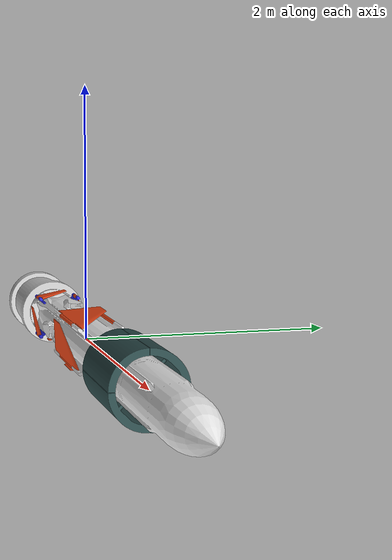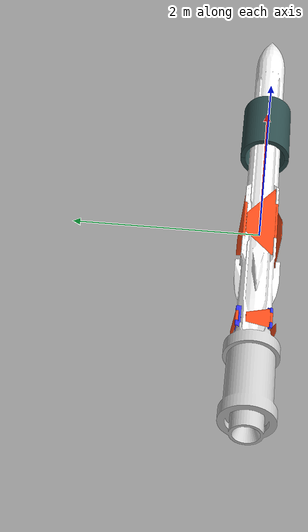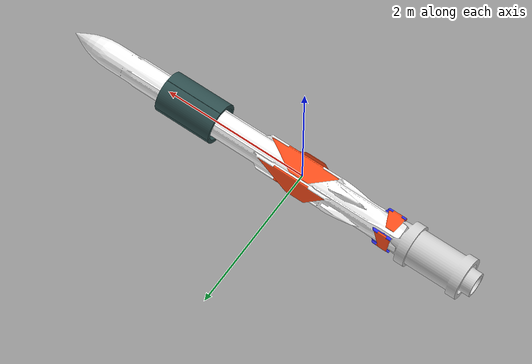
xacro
<?xml version="1.0" ?>
<robot name="mm40b3" xmlns:xacro="http://www.ros.org/wiki/xacro">

<xacro:include filename="$(find mm40b3_description)/urdf/materials.xacro" />
<xacro:include filename="$(find mm40b3_description)/urdf/mm40b3.trans" />
<xacro:include filename="$(find mm40b3_description)/urdf/mm40b3.gazebo" />

<link name="base_link">
  <inertial>
    <origin xyz="0.4387109641054164 -8.999584500533236e-06 -8.999321300238793e-06" rpy="0 0 0"/>
    <mass value="562.7679612503737"/>
    <inertia ixx="12.078708" iyy="817.09871" izz="817.09871" ixy="0.0" iyz="-0.0" ixz="0.0"/>
  </inertial>
  <visual>
    <origin xyz="0 0 0" rpy="0 0 0"/>
    <geometry>
      <mesh filename="package://mm40b3_description/meshes/base_link.stl" scale="0.001 0.001 0.001"/>
    </geometry>
    <material name="white"/>
  </visual>
  <collision>
    <origin xyz="0 0 0" rpy="0 0 0"/>
    <geometry>
      <mesh filename="package://mm40b3_description/meshes/base_link.stl" scale="0.001 0.001 0.001"/>
    </geometry>
  </collision>
</link>

<link name="FinHolder_1">
  <inertial>
    <origin xyz="0.011989934287455206 0.02489547078090079 0.02489052725207211" rpy="0 0 0"/>
    <mass value="0.6999999481439694"/>
    <inertia ixx="0.00025" iyy="0.004649" izz="0.004649" ixy="3e-05" iyz="-9.8e-05" ixz="3e-05"/>
  </inertial>
  <visual>
    <origin xyz="1.262133 -0.12727 -0.12727" rpy="0 0 0"/>
    <geometry>
      <mesh filename="package://mm40b3_description/meshes/FinHolder_1.stl" scale="0.001 0.001 0.001"/>
    </geometry>
    <material name="blue"/>
  </visual>
  <collision>
    <origin xyz="1.262133 -0.12727 -0.12727" rpy="0 0 0"/>
    <geometry>
      <mesh filename="package://mm40b3_description/meshes/FinHolder_1.stl" scale="0.001 0.001 0.001"/>
    </geometry>
  </collision>
</link>

<link name="FinHolder_4">
  <inertial>
    <origin xyz="0.011989934287455206 -0.024890526157868437 0.024895471044104445" rpy="0 0 0"/>
    <mass value="0.6999999481439694"/>
    <inertia ixx="0.00025" iyy="0.004649" izz="0.004649" ixy="-3e-05" iyz="9.8e-05" ixz="3e-05"/>
  </inertial>
  <visual>
    <origin xyz="1.262133 0.127288 -0.12727" rpy="0 0 0"/>
    <geometry>
      <mesh filename="package://mm40b3_description/meshes/FinHolder_4.stl" scale="0.001 0.001 0.001"/>
    </geometry>
    <material name="blue"/>
  </visual>
  <collision>
    <origin xyz="1.262133 0.127288 -0.12727" rpy="0 0 0"/>
    <geometry>
      <mesh filename="package://mm40b3_description/meshes/FinHolder_4.stl" scale="0.001 0.001 0.001"/>
    </geometry>
  </collision>
</link>

<link name="FinHolder_3">
  <inertial>
    <origin xyz="0.011989934287454318 -0.024895469949900717 -0.024890525894664756" rpy="0 0 0"/>
    <mass value="0.6999999481439694"/>
    <inertia ixx="0.00025" iyy="0.004649" izz="0.004649" ixy="-3e-05" iyz="-9.8e-05" ixz="-3e-05"/>
  </inertial>
  <visual>
    <origin xyz="1.262133 0.127288 0.127288" rpy="0 0 0"/>
    <geometry>
      <mesh filename="package://mm40b3_description/meshes/FinHolder_3.stl" scale="0.001 0.001 0.001"/>
    </geometry>
    <material name="blue"/>
  </visual>
  <collision>
    <origin xyz="1.262133 0.127288 0.127288" rpy="0 0 0"/>
    <geometry>
      <mesh filename="package://mm40b3_description/meshes/FinHolder_3.stl" scale="0.001 0.001 0.001"/>
    </geometry>
  </collision>
</link>

<link name="FinHolder_2">
  <inertial>
    <origin xyz="0.011989934287454318 0.024890526988868455 -0.02489546968669709" rpy="0 0 0"/>
    <mass value="0.6999999481439694"/>
    <inertia ixx="0.00025" iyy="0.004649" izz="0.004649" ixy="3e-05" iyz="9.8e-05" ixz="-3e-05"/>
  </inertial>
  <visual>
    <origin xyz="1.262133 -0.12727 0.127288" rpy="0 0 0"/>
    <geometry>
      <mesh filename="package://mm40b3_description/meshes/FinHolder_2.stl" scale="0.001 0.001 0.001"/>
    </geometry>
    <material name="blue"/>
  </visual>
  <collision>
    <origin xyz="1.262133 -0.12727 0.127288" rpy="0 0 0"/>
    <geometry>
      <mesh filename="package://mm40b3_description/meshes/FinHolder_2.stl" scale="0.001 0.001 0.001"/>
    </geometry>
  </collision>
</link>

<link name="Wing1_1">
  <inertial>
    <origin xyz="-0.03120809779189968 0.02095895116205243 -0.0986058785075822" rpy="0 0 0"/>
    <mass value="9.299979574219174"/>
    <inertia ixx="0.055746" iyy="0.442635" izz="0.392244" ixy="0.003624" iyz="0.011218" ixz="-0.017051"/>
  </inertial>
  <visual>
    <origin xyz="-0.057855 -0.163346 -0.163346" rpy="0 0 0"/>
    <geometry>
      <mesh filename="package://mm40b3_description/meshes/Wing1_1.stl" scale="0.001 0.001 0.001"/>
    </geometry>
    <material name="orange"/>
  </visual>
  <collision>
    <origin xyz="-0.057855 -0.163346 -0.163346" rpy="0 0 0"/>
    <geometry>
      <mesh filename="package://mm40b3_description/meshes/Wing1_1.stl" scale="0.001 0.001 0.001"/>
    </geometry>
  </collision>
</link>

<link name="Booster_1">
  <inertial>
    <origin xyz="-0.530558737878678 4.101072758561376e-09 -2.4372112422003445e-10" rpy="0 0 0"/>
    <mass value="120.00001114591107"/>
    <inertia ixx="5.768641" iyy="16.618567" izz="16.618567" ixy="-0.0" iyz="-0.0" ixz="0.0"/>
  </inertial>
  <visual>
    <origin xyz="1.442145 9e-06 9e-06" rpy="0 0 0"/>
    <geometry>
      <mesh filename="package://mm40b3_description/meshes/Booster_1.stl" scale="0.001 0.001 0.001"/>
    </geometry>
    <material name="grey"/>
  </visual>
  <collision>
    <origin xyz="1.442145 9e-06 9e-06" rpy="0 0 0"/>
    <geometry>
      <mesh filename="package://mm40b3_description/meshes/Booster_1.stl" scale="0.001 0.001 0.001"/>
    </geometry>
  </collision>
</link>

<link name="Wing1_2">
  <inertial>
    <origin xyz="-0.031208097791900133 -0.09762773117005005 -0.020751038377032932" rpy="0 0 0"/>
    <mass value="9.299979574219174"/>
    <inertia ixx="0.055746" iyy="0.392244" izz="0.442635" ixy="-0.017051" iyz="-0.011218" ixz="-0.003624"/>
  </inertial>
  <visual>
    <origin xyz="-0.057855 -0.163346 0.163364" rpy="0 0 0"/>
    <geometry>
      <mesh filename="package://mm40b3_description/meshes/Wing1_2.stl" scale="0.001 0.001 0.001"/>
    </geometry>
    <material name="orange"/>
  </visual>
  <collision>
    <origin xyz="-0.057855 -0.163346 0.163364" rpy="0 0 0"/>
    <geometry>
      <mesh filename="package://mm40b3_description/meshes/Wing1_2.stl" scale="0.001 0.001 0.001"/>
    </geometry>
  </collision>
</link>

<link name="Wing1_3">
  <inertial>
    <origin xyz="-0.031208097791899873 -0.020751038640234615 0.09762773226425157" rpy="0 0 0"/>
    <mass value="9.299979574219174"/>
    <inertia ixx="0.055746" iyy="0.442635" izz="0.392244" ixy="-0.003624" iyz="0.011218" ixz="0.017051"/>
  </inertial>
  <visual>
    <origin xyz="-0.057855 0.163364 0.163364" rpy="0 0 0"/>
    <geometry>
      <mesh filename="package://mm40b3_description/meshes/Wing1_3.stl" scale="0.001 0.001 0.001"/>
    </geometry>
    <material name="orange"/>
  </visual>
  <collision>
    <origin xyz="-0.057855 0.163364 0.163364" rpy="0 0 0"/>
    <geometry>
      <mesh filename="package://mm40b3_description/meshes/Wing1_3.stl" scale="0.001 0.001 0.001"/>
    </geometry>
  </collision>
</link>

<link name="Wing1_4">
  <inertial>
    <origin xyz="-0.031208097791899553 0.09762773200104996 0.020751039734436066" rpy="0 0 0"/>
    <mass value="9.299979574219174"/>
    <inertia ixx="0.055746" iyy="0.392244" izz="0.442635" ixy="0.017051" iyz="-0.011218" ixz="0.003624"/>
  </inertial>
  <visual>
    <origin xyz="-0.057855 0.163364 -0.163346" rpy="0 0 0"/>
    <geometry>
      <mesh filename="package://mm40b3_description/meshes/Wing1_4.stl" scale="0.001 0.001 0.001"/>
    </geometry>
    <material name="orange"/>
  </visual>
  <collision>
    <origin xyz="-0.057855 0.163364 -0.163346" rpy="0 0 0"/>
    <geometry>
      <mesh filename="package://mm40b3_description/meshes/Wing1_4.stl" scale="0.001 0.001 0.001"/>
    </geometry>
  </collision>
</link>

<link name="Holder_1">
  <inertial>
    <origin xyz="-0.19999999173289051 0.02523252069763124 0.025232520960823845" rpy="0 0 0"/>
    <mass value="13.50000107858645"/>
    <inertia ixx="0.184494" iyy="0.864601" izz="0.864601" ixy="-0.0" iyz="0.079825" ixz="-0.0"/>
  </inertial>
  <visual>
    <origin xyz="-1.814326 -0.132484 -0.132484" rpy="0 0 0"/>
    <geometry>
      <mesh filename="package://mm40b3_description/meshes/Holder_1.stl" scale="0.001 0.001 0.001"/>
    </geometry>
    <material name="darkgrey"/>
  </visual>
  <collision>
    <origin xyz="-1.814326 -0.132484 -0.132484" rpy="0 0 0"/>
    <geometry>
      <mesh filename="package://mm40b3_description/meshes/Holder_1.stl" scale="0.001 0.001 0.001"/>
    </geometry>
  </collision>
</link>

<link name="Holder_2">
  <inertial>
    <origin xyz="-0.19999999173289051 -0.025232519866623837 0.02523252096083123" rpy="0 0 0"/>
    <mass value="13.50000107858645"/>
    <inertia ixx="0.184494" iyy="0.864601" izz="0.864601" ixy="0.0" iyz="-0.079825" ixz="-0.0"/>
  </inertial>
  <visual>
    <origin xyz="-1.814326 0.132502 -0.132484" rpy="0 0 0"/>
    <geometry>
      <mesh filename="package://mm40b3_description/meshes/Holder_2.stl" scale="0.001 0.001 0.001"/>
    </geometry>
    <material name="darkgrey"/>
  </visual>
  <collision>
    <origin xyz="-1.814326 0.132502 -0.132484" rpy="0 0 0"/>
    <geometry>
      <mesh filename="package://mm40b3_description/meshes/Holder_2.stl" scale="0.001 0.001 0.001"/>
    </geometry>
  </collision>
</link>

<link name="Holder_3">
  <inertial>
    <origin xyz="-0.19999999173289051 -0.025232519866631248 -0.025232519603423792" rpy="0 0 0"/>
    <mass value="13.50000107858645"/>
    <inertia ixx="0.184494" iyy="0.864601" izz="0.864601" ixy="0.0" iyz="0.079825" ixz="0.0"/>
  </inertial>
  <visual>
    <origin xyz="-1.814326 0.132502 0.132502" rpy="0 0 0"/>
    <geometry>
      <mesh filename="package://mm40b3_description/meshes/Holder_3.stl" scale="0.001 0.001 0.001"/>
    </geometry>
    <material name="darkgrey"/>
  </visual>
  <collision>
    <origin xyz="-1.814326 0.132502 0.132502" rpy="0 0 0"/>
    <geometry>
      <mesh filename="package://mm40b3_description/meshes/Holder_3.stl" scale="0.001 0.001 0.001"/>
    </geometry>
  </collision>
</link>

<link name="Holder_4">
  <inertial>
    <origin xyz="-0.19999999173289051 0.0252325206976238 -0.02523251960343123" rpy="0 0 0"/>
    <mass value="13.50000107858645"/>
    <inertia ixx="0.184494" iyy="0.864601" izz="0.864601" ixy="-0.0" iyz="-0.079825" ixz="0.0"/>
  </inertial>
  <visual>
    <origin xyz="-1.814326 -0.132484 0.132502" rpy="0 0 0"/>
    <geometry>
      <mesh filename="package://mm40b3_description/meshes/Holder_4.stl" scale="0.001 0.001 0.001"/>
    </geometry>
    <material name="darkgrey"/>
  </visual>
  <collision>
    <origin xyz="-1.814326 -0.132484 0.132502" rpy="0 0 0"/>
    <geometry>
      <mesh filename="package://mm40b3_description/meshes/Holder_4.stl" scale="0.001 0.001 0.001"/>
    </geometry>
  </collision>
</link>

<link name="Fin_1">
  <inertial>
    <origin xyz="-0.014318287010841813 0.018052617673020382 -0.08493035219325562" rpy="0 0 0"/>
    <mass value="1.500000007859579"/>
    <inertia ixx="0.006929" iyy="0.010397" izz="0.004127" ixy="0.000264" iyz="0.001396" ixz="-0.001243"/>
  </inertial>
  <visual>
    <origin xyz="1.262133 -0.166161 -0.166161" rpy="0 0 0"/>
    <geometry>
      <mesh filename="package://mm40b3_description/meshes/Fin_1.stl" scale="0.001 0.001 0.001"/>
    </geometry>
    <material name="orange"/>
  </visual>
  <collision>
    <origin xyz="1.262133 -0.166161 -0.166161" rpy="0 0 0"/>
    <geometry>
      <mesh filename="package://mm40b3_description/meshes/Fin_1.stl" scale="0.001 0.001 0.001"/>
    </geometry>
  </collision>
</link>

<link name="Fin_2">
  <inertial>
    <origin xyz="-0.014318287010842479 -0.08493058111049845 -0.018052845232855996" rpy="0 0 0"/>
    <mass value="1.500000007859579"/>
    <inertia ixx="0.006929" iyy="0.004127" izz="0.010397" ixy="-0.001243" iyz="-0.001396" ixz="-0.000264"/>
  </inertial>
  <visual>
    <origin xyz="1.262133 -0.166149 0.166191" rpy="0 0 0"/>
    <geometry>
      <mesh filename="package://mm40b3_description/meshes/Fin_2.stl" scale="0.001 0.001 0.001"/>
    </geometry>
    <material name="orange"/>
  </visual>
  <collision>
    <origin xyz="1.262133 -0.166149 0.166191" rpy="0 0 0"/>
    <geometry>
      <mesh filename="package://mm40b3_description/meshes/Fin_2.stl" scale="0.001 0.001 0.001"/>
    </geometry>
  </collision>
</link>

<link name="Fin_3">
  <inertial>
    <origin xyz="-0.014318287010841813 -0.018052616842020475 0.08493035355066292" rpy="0 0 0"/>
    <mass value="1.500000007859579"/>
    <inertia ixx="0.006929" iyy="0.010397" izz="0.004127" ixy="-0.000264" iyz="0.001396" ixz="0.001243"/>
  </inertial>
  <visual>
    <origin xyz="1.262133 0.166179 0.166179" rpy="0 0 0"/>
    <geometry>
      <mesh filename="package://mm40b3_description/meshes/Fin_3.stl" scale="0.001 0.001 0.001"/>
    </geometry>
    <material name="orange"/>
  </visual>
  <collision>
    <origin xyz="1.262133 0.166179 0.166179" rpy="0 0 0"/>
    <geometry>
      <mesh filename="package://mm40b3_description/meshes/Fin_3.stl" scale="0.001 0.001 0.001"/>
    </geometry>
  </collision>
</link>

<link name="Fin_4">
  <inertial>
    <origin xyz="-0.014318287010842257 0.0849303532874592 0.018052617936223952" rpy="0 0 0"/>
    <mass value="1.500000007859579"/>
    <inertia ixx="0.006929" iyy="0.004127" izz="0.010397" ixy="0.001243" iyz="-0.001396" ixz="0.000264"/>
  </inertial>
  <visual>
    <origin xyz="1.262133 0.166179 -0.166161" rpy="0 0 0"/>
    <geometry>
      <mesh filename="package://mm40b3_description/meshes/Fin_4.stl" scale="0.001 0.001 0.001"/>
    </geometry>
    <material name="orange"/>
  </visual>
  <collision>
    <origin xyz="1.262133 0.166179 -0.166161" rpy="0 0 0"/>
    <geometry>
      <mesh filename="package://mm40b3_description/meshes/Fin_4.stl" scale="0.001 0.001 0.001"/>
    </geometry>
  </collision>
</link>

<joint name="fins_rev1" type="revolute">
  <origin xyz="-1.262133 0.12727 0.12727" rpy="0 0 0"/>
  <parent link="base_link"/>
  <child link="FinHolder_1"/>
  <axis xyz="-0.0 0.707107 0.707107"/>
  <limit upper="0.349066" lower="-0.349066" effort="100" velocity="100"/>
</joint>

<joint name="fins_rev4" type="revolute">
  <origin xyz="-1.262133 -0.127288 0.12727" rpy="0 0 0"/>
  <parent link="base_link"/>
  <child link="FinHolder_4"/>
  <axis xyz="-0.0 -0.707107 0.707107"/>
  <limit upper="0.349066" lower="-0.349066" effort="100" velocity="100"/>
</joint>

<joint name="fins_rev3" type="revolute">
  <origin xyz="-1.262133 -0.127288 -0.127288" rpy="0 0 0"/>
  <parent link="base_link"/>
  <child link="FinHolder_3"/>
  <axis xyz="-0.0 -0.707107 -0.707107"/>
  <limit upper="0.349066" lower="-0.349066" effort="100" velocity="100"/>
</joint>

<joint name="fins_rev2" type="revolute">
  <origin xyz="-1.262133 0.12727 -0.127288" rpy="0 0 0"/>
  <parent link="base_link"/>
  <child link="FinHolder_2"/>
  <axis xyz="-0.0 0.707107 -0.707107"/>
  <limit upper="0.349066" lower="-0.349066" effort="100" velocity="100"/>
</joint>

<joint name="wings_fold1" type="revolute">
  <origin xyz="0.057855 0.163346 0.163346" rpy="0 0 0"/>
  <parent link="base_link"/>
  <child link="Wing1_1"/>
  <axis xyz="1.0 -0.0 -0.0"/>
  <limit upper="2.146755" lower="0.0" effort="100" velocity="100"/>
</joint>

<joint name="booster_fixing" type="fixed">
  <origin xyz="-1.442145 -9e-06 -9e-06" rpy="0 0 0"/>
  <parent link="base_link"/>
  <child link="Booster_1"/>
</joint>

<joint name="wings_fold2" type="revolute">
  <origin xyz="0.057855 0.163346 -0.163364" rpy="0 0 0"/>
  <parent link="base_link"/>
  <child link="Wing1_2"/>
  <axis xyz="1.0 0.0 -0.0"/>
  <limit upper="2.146755" lower="0.0" effort="100" velocity="100"/>
</joint>

<joint name="wings_fold3" type="revolute">
  <origin xyz="0.057855 -0.163364 -0.163364" rpy="0 0 0"/>
  <parent link="base_link"/>
  <child link="Wing1_3"/>
  <axis xyz="1.0 0.0 -0.0"/>
  <limit upper="2.146755" lower="0.0" effort="100" velocity="100"/>
</joint>

<joint name="wings_fold4" type="revolute">
  <origin xyz="0.057855 -0.163364 0.163346" rpy="0 0 0"/>
  <parent link="base_link"/>
  <child link="Wing1_4"/>
  <axis xyz="1.0 -0.0 -0.0"/>
  <limit upper="2.146755" lower="0.0" effort="100" velocity="100"/>
</joint>

<joint name="HolderJoint1" type="fixed">
  <origin xyz="1.814326 0.132484 0.132484" rpy="0 0 0"/>
  <parent link="base_link"/>
  <child link="Holder_1"/>
</joint>

<joint name="HolderJoint2" type="fixed">
  <origin xyz="1.814326 -0.132502 0.132484" rpy="0 0 0"/>
  <parent link="base_link"/>
  <child link="Holder_2"/>
</joint>

<joint name="HolderJoint3" type="fixed">
  <origin xyz="1.814326 -0.132502 -0.132502" rpy="0 0 0"/>
  <parent link="base_link"/>
  <child link="Holder_3"/>
</joint>

<joint name="HolderJoint4" type="fixed">
  <origin xyz="1.814326 0.132484 -0.132502" rpy="0 0 0"/>
  <parent link="base_link"/>
  <child link="Holder_4"/>
</joint>

<joint name="fin_fold1" type="revolute">
  <origin xyz="0.0 0.038891 0.038891" rpy="0 0 0"/>
  <parent link="FinHolder_1"/>
  <child link="Fin_1"/>
  <axis xyz="1.0 0.0 0.0"/>
  <limit upper="2.146755" lower="0.0" effort="100" velocity="100"/>
</joint>

<joint name="fin_fold2" type="revolute">
  <origin xyz="0.0 0.038879 -0.038903" rpy="0 0 0"/>
  <parent link="FinHolder_2"/>
  <child link="Fin_2"/>
  <axis xyz="1.0 0.0 -0.0"/>
  <limit upper="2.146755" lower="0.0" effort="100" velocity="100"/>
</joint>

<joint name="fin_fold3" type="revolute">
  <origin xyz="0.0 -0.038891 -0.038891" rpy="0 0 0"/>
  <parent link="FinHolder_3"/>
  <child link="Fin_3"/>
  <axis xyz="1.0 -0.0 -0.0"/>
  <limit upper="2.146755" lower="0.0" effort="100" velocity="100"/>
</joint>

<joint name="fin_fold4" type="revolute">
  <origin xyz="0.0 -0.038891 0.038891" rpy="0 0 0"/>
  <parent link="FinHolder_4"/>
  <child link="Fin_4"/>
  <axis xyz="1.0 -0.0 -0.0"/>
  <limit upper="2.146755" lower="0.0" effort="100" velocity="100"/>
</joint>

</robot>

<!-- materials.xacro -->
<robot name="mm40b3" xmlns:xacro="http://www.ros.org/wiki/xacro" >

  <material name="grey">
    <color rgba="${211/256} ${211/256} ${211/256} 1.0"/>
  </material>

  <material name="darkgrey">
    <color rgba="${47/255} ${79/255} ${79/255} 1.000"/>
  </material>

  <material name="silver">
    <color rgba="0.700 0.700 0.700 1.000"/>
  </material>

  <material name="white">
    <color rgba="1 1 1 1" />
  </material>

  <material name="orange">
    <color rgba="1 0.3 0.1 1"/>
  </material>

  <material name="blue">
    <color rgba="0.2 0.2 1 1"/>
  </material>

  <material name="red">
    <color rgba="0.8 0 0 1"/>
  </material>

  <material name="green">
    <color rgba="0.0 1 0.0 1"/>
  </material>

  <material name="black">
    <color rgba="0 0 0 1"/>
  </material>

</robot>
